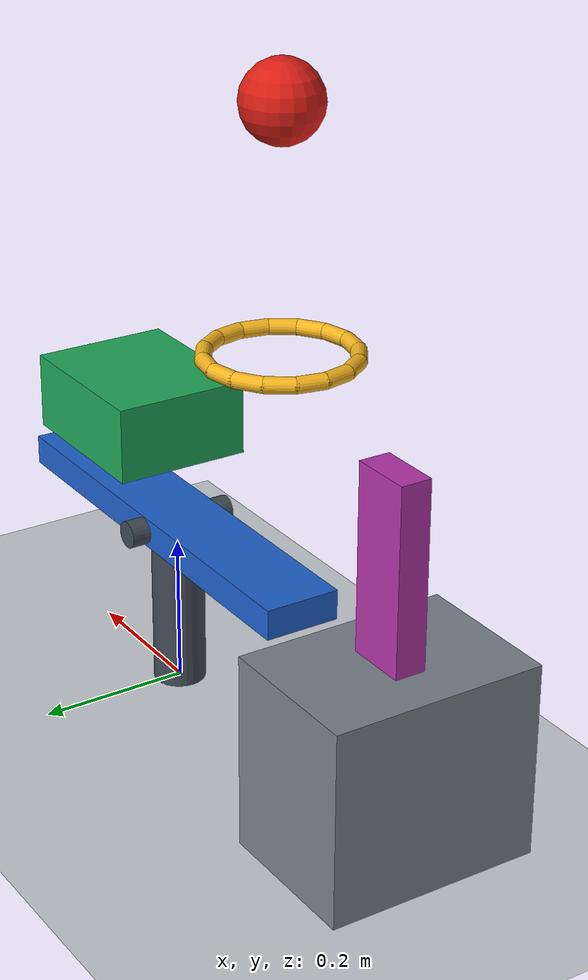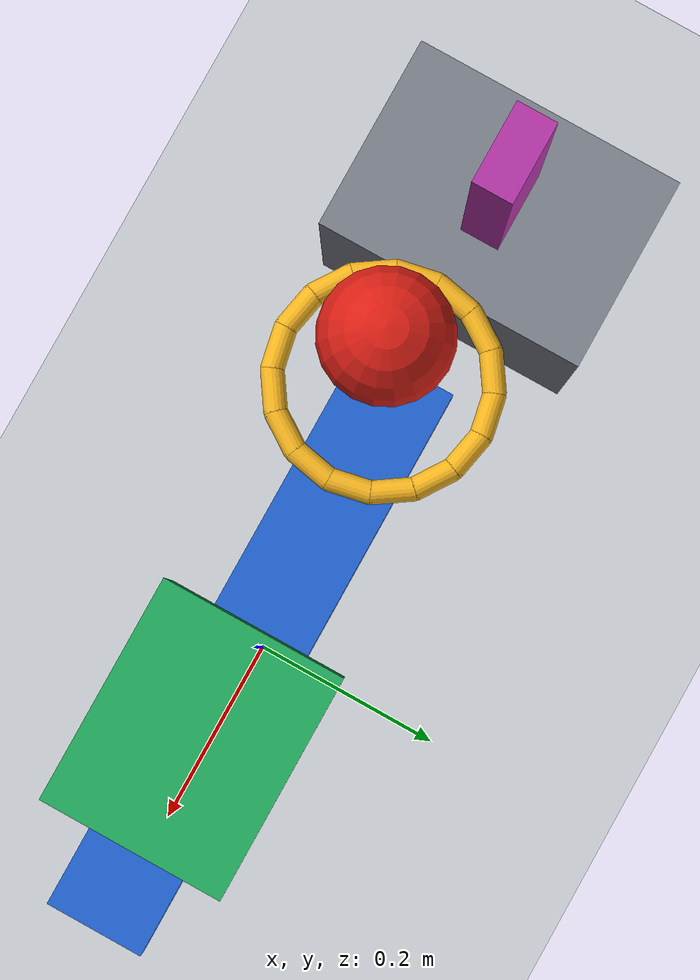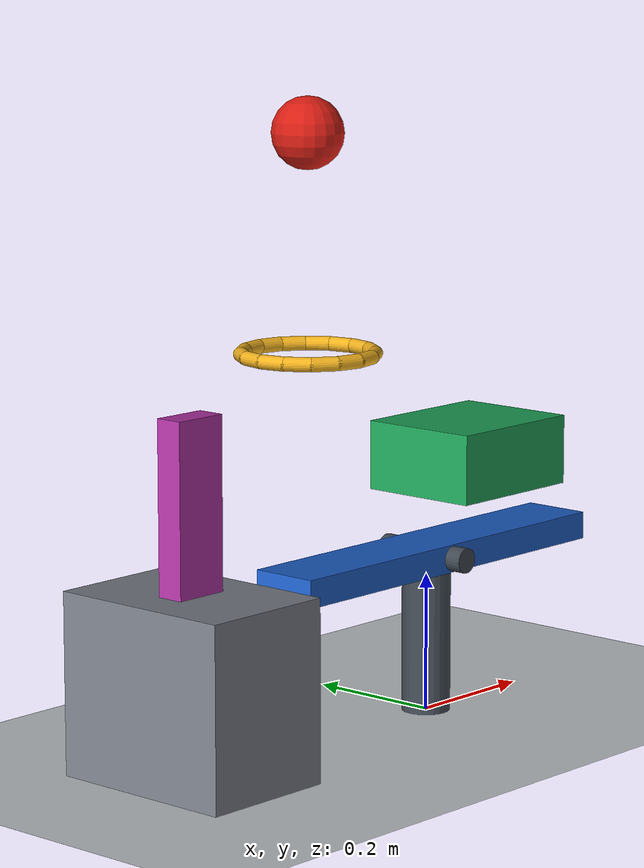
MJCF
<mujoco model="ball_ring_lever_cart">
  <compiler angle="degree" inertiafromgeom="true"/>
  <option timestep="0.002" gravity="0 0 -9.81" integrator="implicitfast" solver="Newton" iterations="100" tolerance="1e-10"/>
  <size njmax="1000" nconmax="200"/>

  <visual>
    <headlight ambient="0.35 0.35 0.35" diffuse="0.7 0.7 0.7" specular="0.2 0.2 0.2"/>
    <global azimuth="110" elevation="-20"/>
  </visual>

  <!-- Sliding friction is 0.72. Small torsional and rolling friction allow the ball to settle. -->
  <!-- Contact damping ratio 0.71565 targets restitution 0.04 for an isolated impact. -->
  <worldbody>
    <light name="main_light" pos="0 -2 3" dir="0 1 -2" diffuse="0.8 0.8 0.8"/>
    <camera name="overview" pos="1.35 -2.4 1.35" xyaxes="0.872 0.490 0 -0.195 0.347 0.917"/>

    <geom name="floor" type="plane" size="3 3 0.1" friction="0.72 0.005 0.005" condim="6" solref="0.006 0.71565" solimp="0.95 0.99 0.001" rgba="0.78 0.80 0.82 1"/>

    <!-- Initial ball center is 0.30 m above the ring plane. -->
    <body name="ball1" pos="-0.25 0 0.85">
      <freejoint name="ball1_free"/>
      <geom name="ball1_sphere" type="sphere" size="0.05" mass="0.20" friction="0.72 0.005 0.005" condim="6" solref="0.006 0.71565" solimp="0.95 0.99 0.001" rgba="0.85 0.12 0.08 1"/>
    </body>

    <!-- Sixteen capsules form a fixed horizontal ring with 0.16 m minimum clear diameter. -->
    <body name="ring1" pos="-0.25 0 0.55">
      <geom name="ring1_01" type="capsule" fromto="0.091763 0 0 0.084780 0.035117 0" size="0.01" friction="0.72 0.005 0.005" condim="6" solref="0.006 0.71565" solimp="0.95 0.99 0.001" rgba="0.95 0.70 0.12 1"/>
      <geom name="ring1_02" type="capsule" fromto="0.084780 0.035117 0 0.064886 0.064886 0" size="0.01" friction="0.72 0.005 0.005" condim="6" solref="0.006 0.71565" solimp="0.95 0.99 0.001" rgba="0.95 0.70 0.12 1"/>
      <geom name="ring1_03" type="capsule" fromto="0.064886 0.064886 0 0.035117 0.084780 0" size="0.01" friction="0.72 0.005 0.005" condim="6" solref="0.006 0.71565" solimp="0.95 0.99 0.001" rgba="0.95 0.70 0.12 1"/>
      <geom name="ring1_04" type="capsule" fromto="0.035117 0.084780 0 0 0.091763 0" size="0.01" friction="0.72 0.005 0.005" condim="6" solref="0.006 0.71565" solimp="0.95 0.99 0.001" rgba="0.95 0.70 0.12 1"/>
      <geom name="ring1_05" type="capsule" fromto="0 0.091763 0 -0.035117 0.084780 0" size="0.01" friction="0.72 0.005 0.005" condim="6" solref="0.006 0.71565" solimp="0.95 0.99 0.001" rgba="0.95 0.70 0.12 1"/>
      <geom name="ring1_06" type="capsule" fromto="-0.035117 0.084780 0 -0.064886 0.064886 0" size="0.01" friction="0.72 0.005 0.005" condim="6" solref="0.006 0.71565" solimp="0.95 0.99 0.001" rgba="0.95 0.70 0.12 1"/>
      <geom name="ring1_07" type="capsule" fromto="-0.064886 0.064886 0 -0.084780 0.035117 0" size="0.01" friction="0.72 0.005 0.005" condim="6" solref="0.006 0.71565" solimp="0.95 0.99 0.001" rgba="0.95 0.70 0.12 1"/>
      <geom name="ring1_08" type="capsule" fromto="-0.084780 0.035117 0 -0.091763 0 0" size="0.01" friction="0.72 0.005 0.005" condim="6" solref="0.006 0.71565" solimp="0.95 0.99 0.001" rgba="0.95 0.70 0.12 1"/>
      <geom name="ring1_09" type="capsule" fromto="-0.091763 0 0 -0.084780 -0.035117 0" size="0.01" friction="0.72 0.005 0.005" condim="6" solref="0.006 0.71565" solimp="0.95 0.99 0.001" rgba="0.95 0.70 0.12 1"/>
      <geom name="ring1_10" type="capsule" fromto="-0.084780 -0.035117 0 -0.064886 -0.064886 0" size="0.01" friction="0.72 0.005 0.005" condim="6" solref="0.006 0.71565" solimp="0.95 0.99 0.001" rgba="0.95 0.70 0.12 1"/>
      <geom name="ring1_11" type="capsule" fromto="-0.064886 -0.064886 0 -0.035117 -0.084780 0" size="0.01" friction="0.72 0.005 0.005" condim="6" solref="0.006 0.71565" solimp="0.95 0.99 0.001" rgba="0.95 0.70 0.12 1"/>
      <geom name="ring1_12" type="capsule" fromto="-0.035117 -0.084780 0 0 -0.091763 0" size="0.01" friction="0.72 0.005 0.005" condim="6" solref="0.006 0.71565" solimp="0.95 0.99 0.001" rgba="0.95 0.70 0.12 1"/>
      <geom name="ring1_13" type="capsule" fromto="0 -0.091763 0 0.035117 -0.084780 0" size="0.01" friction="0.72 0.005 0.005" condim="6" solref="0.006 0.71565" solimp="0.95 0.99 0.001" rgba="0.95 0.70 0.12 1"/>
      <geom name="ring1_14" type="capsule" fromto="0.035117 -0.084780 0 0.064886 -0.064886 0" size="0.01" friction="0.72 0.005 0.005" condim="6" solref="0.006 0.71565" solimp="0.95 0.99 0.001" rgba="0.95 0.70 0.12 1"/>
      <geom name="ring1_15" type="capsule" fromto="0.064886 -0.064886 0 0.084780 -0.035117 0" size="0.01" friction="0.72 0.005 0.005" condim="6" solref="0.006 0.71565" solimp="0.95 0.99 0.001" rgba="0.95 0.70 0.12 1"/>
      <geom name="ring1_16" type="capsule" fromto="0.084780 -0.035117 0 0.091763 0 0" size="0.01" friction="0.72 0.005 0.005" condim="6" solref="0.006 0.71565" solimp="0.95 0.99 0.001" rgba="0.95 0.70 0.12 1"/>
    </body>

    <body name="lever_mount" pos="0 0 0">
      <geom name="lever_mount_column" type="cylinder" pos="0 0 0.105" size="0.035 0.105" contype="0" conaffinity="0" rgba="0.25 0.28 0.32 1"/>
      <geom name="lever_mount_axle" type="cylinder" pos="0 0 0.23" quat="0.70710678 0.70710678 0 0" size="0.018 0.075" contype="0" conaffinity="0" rgba="0.25 0.28 0.32 1"/>
    </body>

    <!-- At first touch the ball center is z=0.30, 0.25 m below the ring plane. -->
    <!-- Positive hinge motion lowers the ball-side end and raises the cart-side end. -->
    <!-- The rising end meets the cart's lower-right corner and drives the cart toward -x. -->
    <body name="lever1" pos="0 0 0.23">
      <joint name="lever1_hinge" type="hinge" axis="0 -1 0" limited="true" range="0 45" damping="0.04" solreflimit="0.004 1" solimplimit="0.99 0.99 0.001"/>
      <geom name="lever1_beam" type="box" size="0.30 0.05 0.02" mass="0.50" friction="0.72 0.005 0.005" condim="6" solref="0.006 0.71565" solimp="0.95 0.99 0.001" rgba="0.12 0.38 0.80 1"/>
    </body>

    <body name="cart1" pos="0.09 0 0.365">
      <joint name="cart1_slide" type="slide" axis="-1 0 0" limited="true" range="0 0.70" damping="0.20" solreflimit="0.004 1" solimplimit="0.99 0.99 0.001"/>
      <geom name="cart1_box" type="box" size="0.11 0.09 0.05" mass="0.50" friction="0.72 0.005 0.005" condim="6" solref="0.006 0.71565" solimp="0.95 0.99 0.001" rgba="0.12 0.65 0.35 1"/>
    </body>

    <!-- This fixed plinth places the upright domino at the cart's contact height. -->
    <body name="domino1_plinth" pos="-0.48 0 0.1275">
      <geom name="domino1_plinth_box" type="box" size="0.10 0.14 0.1275" friction="0.72 0.005 0.005" condim="6" solref="0.006 0.71565" solimp="0.95 0.99 0.001" rgba="0.48 0.50 0.54 1"/>
    </body>

    <!-- Initial cart left face: x=-0.02; domino right face: x=-0.44. -->
    <!-- The first cart-domino contact therefore occurs after 0.42 m of slide travel. -->
    <body name="domino1" pos="-0.48 0 0.375">
      <freejoint name="domino1_free"/>
      <geom name="domino1_box" type="box" size="0.04 0.02 0.12" mass="0.25" friction="0.72 0.005 0.005" condim="6" solref="0.006 0.71565" solimp="0.95 0.99 0.001" rgba="0.70 0.20 0.65 1"/>
    </body>
  </worldbody>

  <keyframe>
    <key name="start" time="0" qpos="-0.25 0 0.85 1 0 0 0 0 0 -0.48 0 0.375 1 0 0 0" qvel="0 0 0 0 0 0 0 0 0 0 0 0 0 0"/>
  </keyframe>
</mujoco>
